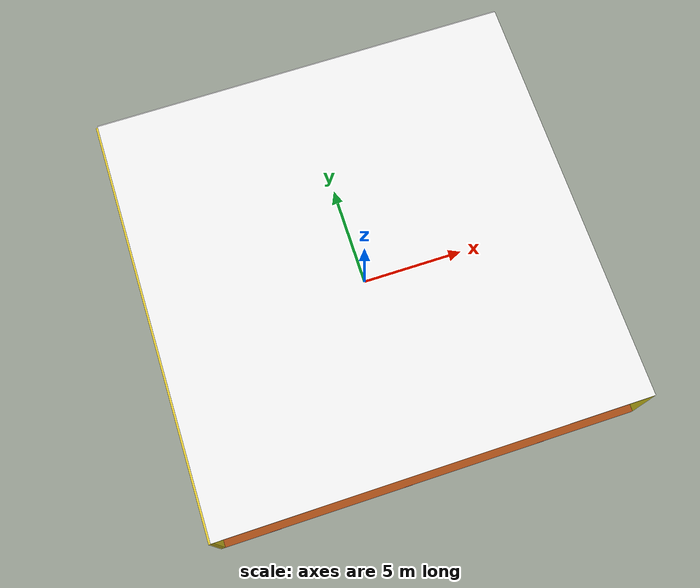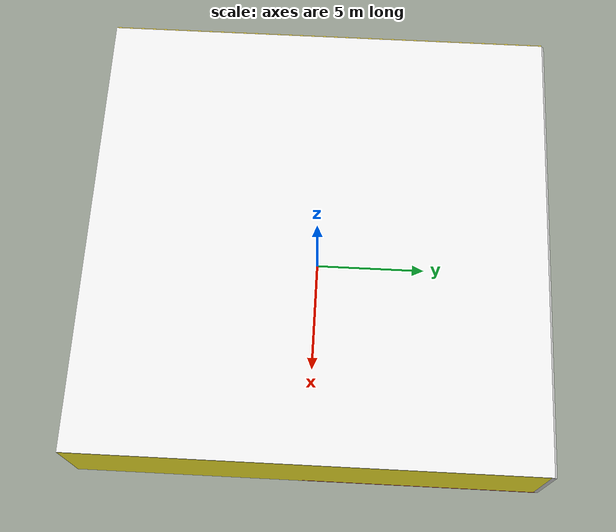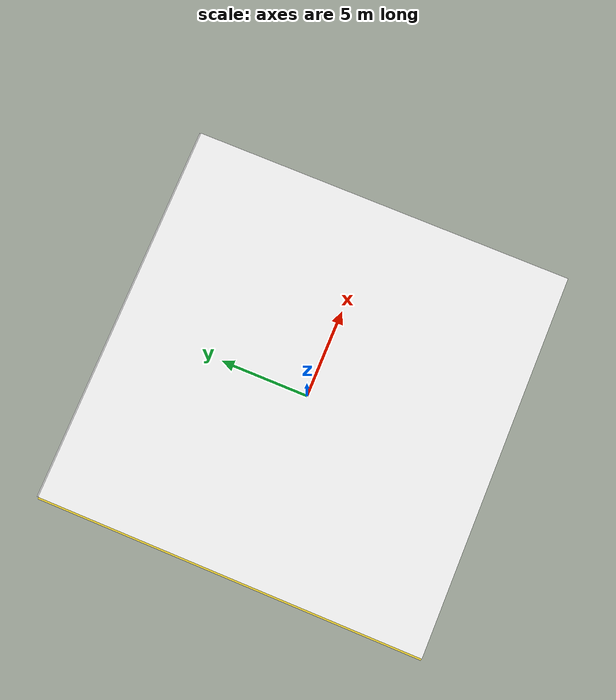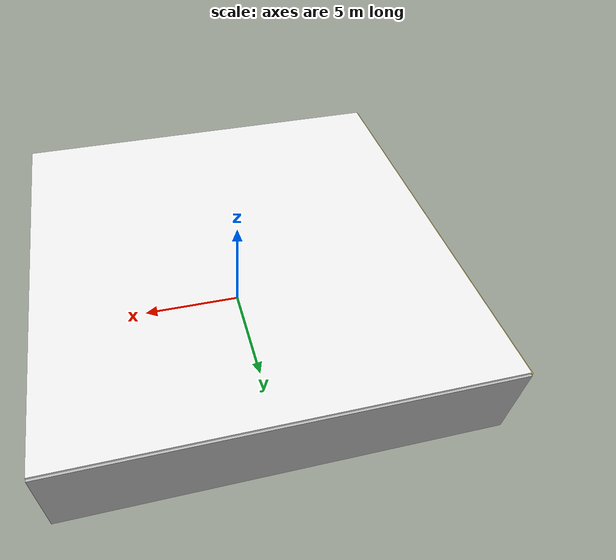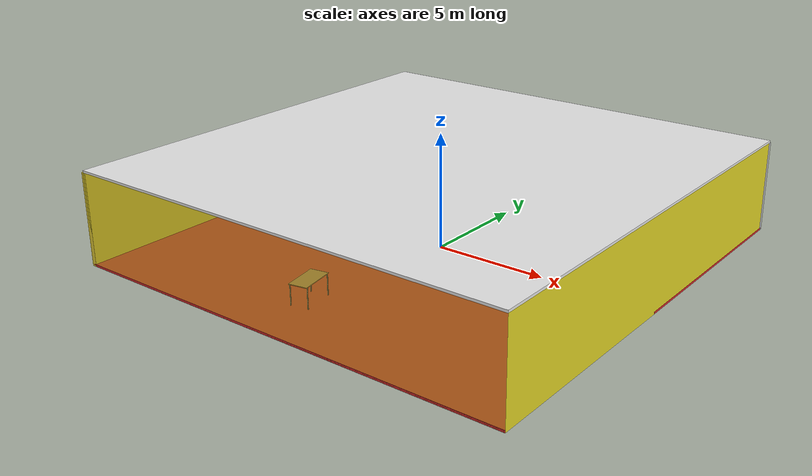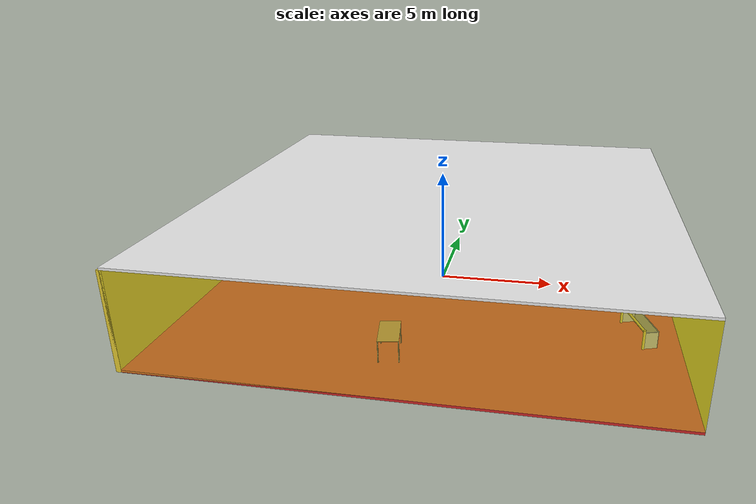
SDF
<sdf version="1.4">
 <world name="default">
  <physics type="ode">
   <max_step_size>0.001</max_step_size>
   <real_time_factor>1</real_time_factor>
   <real_time_update_rate>1000</real_time_update_rate>
   <gravity>0 0 -9.8</gravity>
  </physics>
  <scene><ambient>0.4 0.4 0.4 1</ambient><background>0.7 0.7 0.7 1</background><shadows>1</shadows></scene>
  <model name="Surrounding">
   <static>1</static>
   <link name="Ceiling">
    <collision name="Ceiling_Collision"><geometry><box><size>20 20 0.1</size></box></geometry></collision>
    <visual name="Ceiling_Visual">
     <geometry><box><size>20 20 0.1</size></box></geometry>
     <material>
      <script><uri>file://media/materials/scripts/gazebo.material</uri><name>Gazebo/WhiteGlow</name></script>
     </material>
    </visual>
    <pose>0 0 4.05 0 0 0</pose>
   </link>
   <link name="Wall_South">
    <collision name="Wall_South_Collision">
     <geometry><box><size>20 0 4</size></box></geometry>
     <pose>0 0 2 0 -0 0</pose>
    </collision>
    <visual name="Wall_South_Visual">
     <pose>0 0 2 0 -0 0</pose>
     <geometry><box><size>20 0 4</size></box></geometry>
     <material>
      <script>
       <uri>file://media/materials/scripts/gazebo.material</uri>
       <name>Gazebo/YellowTransparent</name>
      </script>
     </material>
    </visual>
    <velocity_decay><linear>0</linear><angular>0</angular></velocity_decay>
    <pose>0 -10 0 0 -0 0</pose>
   </link>
   <link name="Wall_East">
    <collision name="Wall_21_Collision">
     <geometry><box><size>20 0 4</size></box></geometry>
     <pose>0 0 2 0 -0 0</pose>
    </collision>
    <visual name="Wall_21_Visual">
     <pose>0 0 2 0 -0 0</pose>
     <geometry><box><size>20 0 4</size></box></geometry>
     <material>
      <script><uri>file://media/materials/scripts/gazebo.material</uri><name>Gazebo/YellowGlow</name></script>
     </material>
    </visual>
    <velocity_decay><linear>0</linear><angular>0</angular></velocity_decay>
    <pose>10 0 0 0 -0 1.5708</pose>
   </link>
   <link name="Wall_North">
    <collision name="Wall_22_Collision">
     <geometry><box><size>20 0.2 4</size></box></geometry>
     <pose>0 0 2 0 -0 0</pose>
    </collision>
    <visual name="Wall_22_Visual">
     <pose>0 0 2 0 -0 0</pose>
     <geometry><box><size>20 0.2 4</size></box></geometry>
     <material>
      <script><uri>file://media/materials/scripts/gazebo.material</uri><name>Gazebo/CloudySky</name></script>
     </material>
    </visual>
    <velocity_decay><linear>0</linear><angular>0</angular></velocity_decay>
    <pose>0 10 0 0 -0 0</pose>
   </link>
   <link name="Wall_West">
    <collision name="Wall_23_Collision">
     <geometry><box><size>20 0.2 4</size></box></geometry>
     <pose>0 0 2 0 -0 0</pose>
    </collision>
    <visual name="Wall_23_Visual">
     <pose>0 0 2 0 -0 0</pose>
     <geometry><box><size>20 0.2 4</size></box></geometry>
     <material>
      <script><uri>file://media/materials/scripts/gazebo.material</uri><name>Gazebo/ZincYellow</name></script>
     </material>
    </visual>
    <velocity_decay><linear>0</linear><angular>0</angular></velocity_decay>
    <pose>-10 0 0 0 0 -1.5708</pose>
   </link>
   <link name="Ground_link">
    <collision name="collision">
     <pose>0 0 .05 0 -0 0</pose>
     <geometry><box><size>20 20 0.1</size></box></geometry>
    </collision>
    <visual name="visual">
     <pose>0 0 .05 0 -0 0</pose>
     <geometry><box><size>20 20 0.1</size></box></geometry>
     <material>
      <script><uri>file://media/materials/scripts/gazebo.material</uri><name>Gazebo/RedBright</name></script>
     </material>
    </visual>
   </link>
   <static>1</static>
  </model>
  <spherical_coordinates>
   <surface_model>EARTH_WGS84</surface_model>
   <latitude_deg>0</latitude_deg>
   <longitude_deg>0</longitude_deg>
   <elevation>0</elevation>
   <heading_deg>0</heading_deg>
  </spherical_coordinates>
  <light name="lightball_0" type="diffuse">
   <diffuse>0.8 0.8 0.8 1</diffuse>
   <specular>0.2 0.2 0.2 1</specular>
   <attenuation>
    <range>100</range>
    <constant>0.7</constant>
    <linear>0.01</linear>
    <quadratic>0.001</quadratic>
   </attenuation>
   <direction>-0.5 0.1 -0.9</direction>
   <pose>3.97682833878 9.32883836696 0.547414844808 0 0 0</pose>
  </light>
  <light name="lightball_1" type="diffuse">
   <diffuse>0.8 0.8 0.8 1</diffuse>
   <specular>0.2 0.2 0.2 1</specular>
   <attenuation>
    <range>100</range>
    <constant>0.7</constant>
    <linear>0.01</linear>
    <quadratic>0.001</quadratic>
   </attenuation>
   <direction>-0.5 0.1 -0.9</direction>
   <pose>-9.34003620171 -5.01010625796 2.99863847279 0 0 0</pose>
  </light>
  <light name="lightball_2" type="diffuse">
   <diffuse>0.8 0.8 0.8 1</diffuse>
   <specular>0.2 0.2 0.2 1</specular>
   <attenuation>
    <range>100</range>
    <constant>0.7</constant>
    <linear>0.01</linear>
    <quadratic>0.001</quadratic>
   </attenuation>
   <direction>-0.5 0.1 -0.9</direction>
   <pose>9.29557534041 9.35300004025 0.864081971843 0 0 0</pose>
  </light>
  <light name="lightball_3" type="diffuse">
   <diffuse>0.8 0.8 0.8 1</diffuse>
   <specular>0.2 0.2 0.2 1</specular>
   <attenuation>
    <range>100</range>
    <constant>0.7</constant>
    <linear>0.01</linear>
    <quadratic>0.001</quadratic>
   </attenuation>
   <direction>-0.5 0.1 -0.9</direction>
   <pose>9.22709508611 4.28334156825 3.78574082918 0 0 0</pose>
  </light>
  <light name="lightball_4" type="diffuse">
   <diffuse>0.8 0.8 0.8 1</diffuse>
   <specular>0.2 0.2 0.2 1</specular>
   <attenuation>
    <range>100</range>
    <constant>0.7</constant>
    <linear>0.01</linear>
    <quadratic>0.001</quadratic>
   </attenuation>
   <direction>-0.5 0.1 -0.9</direction>
   <pose>-2.7582185648 -5.24785226064 3.43266816246 0 0 0</pose>
  </light>
  <light name="lightball_5" type="diffuse">
   <diffuse>0.8 0.8 0.8 1</diffuse>
   <specular>0.2 0.2 0.2 1</specular>
   <attenuation>
    <range>100</range>
    <constant>0.7</constant>
    <linear>0.01</linear>
    <quadratic>0.001</quadratic>
   </attenuation>
   <direction>-0.5 0.1 -0.9</direction>
   <pose>5.71317175404 5.27967562852 1.64925007542 0 0 0</pose>
  </light>
  <light name="lightball_6" type="diffuse">
   <diffuse>0.8 0.8 0.8 1</diffuse>
   <specular>0.2 0.2 0.2 1</specular>
   <attenuation>
    <range>100</range>
    <constant>0.7</constant>
    <linear>0.01</linear>
    <quadratic>0.001</quadratic>
   </attenuation>
   <direction>-0.5 0.1 -0.9</direction>
   <pose>-7.45309151891 -7.03545470341 1.09054288199 0 0 0</pose>
  </light>
  <light name="lightball_7" type="diffuse">
   <diffuse>0.8 0.8 0.8 1</diffuse>
   <specular>0.2 0.2 0.2 1</specular>
   <attenuation>
    <range>100</range>
    <constant>0.7</constant>
    <linear>0.01</linear>
    <quadratic>0.001</quadratic>
   </attenuation>
   <direction>-0.5 0.1 -0.9</direction>
   <pose>8.05590263008 6.01483720596 2.00908124921 0 0 0</pose>
  </light>
  <light name="lightball_8" type="diffuse">
   <diffuse>0.8 0.8 0.8 1</diffuse>
   <specular>0.2 0.2 0.2 1</specular>
   <attenuation>
    <range>100</range>
    <constant>0.7</constant>
    <linear>0.01</linear>
    <quadratic>0.001</quadratic>
   </attenuation>
   <direction>-0.5 0.1 -0.9</direction>
   <pose>5.29389690861 -7.74655510409 3.24178524283 0 0 0</pose>
  </light>
  <light name="lightball_9" type="diffuse">
   <diffuse>0.8 0.8 0.8 1</diffuse>
   <specular>0.2 0.2 0.2 1</specular>
   <attenuation>
    <range>100</range>
    <constant>0.7</constant>
    <linear>0.01</linear>
    <quadratic>0.001</quadratic>
   </attenuation>
   <direction>-0.5 0.1 -0.9</direction>
   <pose>3.05475454989 -0.320932547386 2.71170592646 0 0 0</pose>
  </light>
  <light name="lightball_10" type="diffuse">
   <diffuse>0.8 0.8 0.8 1</diffuse>
   <specular>0.2 0.2 0.2 1</specular>
   <attenuation>
    <range>100</range>
    <constant>0.7</constant>
    <linear>0.01</linear>
    <quadratic>0.001</quadratic>
   </attenuation>
   <direction>-0.5 0.1 -0.9</direction>
   <pose>3.78182624142 -5.36582544412 3.01513921709 0 0 0</pose>
  </light>
  <light name="lightball_11" type="diffuse">
   <diffuse>0.8 0.8 0.8 1</diffuse>
   <specular>0.2 0.2 0.2 1</specular>
   <attenuation>
    <range>100</range>
    <constant>0.7</constant>
    <linear>0.01</linear>
    <quadratic>0.001</quadratic>
   </attenuation>
   <direction>-0.5 0.1 -0.9</direction>
   <pose>-6.94657071743 -8.65614219876 1.31934745848 0 0 0</pose>
  </light>
  <light name="lightball_12" type="diffuse">
   <diffuse>0.8 0.8 0.8 1</diffuse>
   <specular>0.2 0.2 0.2 1</specular>
   <attenuation>
    <range>100</range>
    <constant>0.7</constant>
    <linear>0.01</linear>
    <quadratic>0.001</quadratic>
   </attenuation>
   <direction>-0.5 0.1 -0.9</direction>
   <pose>-2.45998644504 3.02152828858 2.64933029381 0 0 0</pose>
  </light>
  <include>
   <uri>model://construction_cone</uri>
   <pose>-3.46924592117 -2.08482971433 0 0 0 3.02755302895</pose>
  </include>
  <include><uri>model://table</uri><pose>-4.35743549242 7.6263648807 0 0 0 1.98253296624</pose></include>
  <include><uri>model://table</uri><pose>-0.747020598218 -7.15608955588 0 0 0 1.75252176521</pose></include>
  <include>
   <uri>model://construction_cone</uri>
   <pose>2.50051902542 3.37471373492 0 0 0 2.81217266102</pose>
  </include>
  <include>
   <uri>model://textured_shapes</uri>
   <pose>5.1466393375 7.95201608115 0 0 0 0.92502199646</pose>
  </include>
  <include>
   <uri>model://robocup_3Dsim_goal</uri>
   <pose>8.23787553743 -4.2499921337 0 0 0 0.318793030055</pose>
  </include>
  <include>
   <uri>model://construction_cone</uri>
   <pose>7.40903548979 2.52380728318 0 0 0 2.10963653537</pose>
  </include>
  <include>
   <uri>model://textured_shapes</uri>
   <pose>6.77915736604 7.07527549921 0 0 0 2.82453844029</pose>
  </include>
 </world>
</sdf>

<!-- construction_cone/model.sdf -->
<sdf version="1.5">
  <model name="Construction Cone">
    <link name="link">
      <collision name="collision">
        <geometry>
          <mesh>
            <scale>10 10 10</scale>
            <uri>file://isr-testbed/construction_cone/meshes/construction_cone.dae</uri>
          </mesh>
        </geometry>
      </collision>
      <visual name="visual">
        <geometry>
          <mesh>
            <scale>10 10 10</scale>
            <uri>file://isr-testbed/construction_cone/meshes/construction_cone.dae</uri>
          </mesh>
        </geometry>
      </visual>
    </link>
  </model>
</sdf>

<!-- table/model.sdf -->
<sdf version="1.5">
  <model name="table">
    <static>true</static>
    <link name="link">
      <collision name="surface">
        <pose>0 0 1.0 0 0 0</pose>
        <geometry>
          <box>
            <size>1.5 0.8 0.03</size>
          </box>
        </geometry>
        <surface>
          <friction>
            <ode>
              <mu>0.6</mu>
              <mu2>0.6</mu2>
            </ode>
          </friction>
        </surface>
      </collision>
      <visual name="visual1">
        <pose>0 0 1.0 0 0 0</pose>
        <geometry>
          <box>
            <size>1.5 0.8 0.03</size>
          </box>
        </geometry>
        <material>
          <script>
            <uri>model://media/materials/scripts/gazebo.material</uri>
            <name>Gazebo/Wood</name>
          </script>
        </material>
      </visual>
      <collision name="front_left_leg">
        <pose>0.68 0.38 0.5 0 0 0</pose>
        <geometry>
          <cylinder>
            <radius>0.02</radius>
            <length>1.0</length>
          </cylinder>
        </geometry>
      </collision>
      <visual name="front_left_leg">
        <pose>0.68 0.38 0.5 0 0 0</pose>
        <geometry>
          <cylinder>
            <radius>0.02</radius>
            <length>1.0</length>
          </cylinder>
        </geometry>
        <material>
          <script>
            <uri>model://media/materials/scripts/gazebo.material</uri>
            <name>Gazebo/Grey</name>
          </script>
        </material>
      </visual>
      <collision name="front_right_leg">
        <pose>0.68 -0.38 0.5 0 0 0</pose>
        <geometry>
          <cylinder>
            <radius>0.02</radius>
            <length>1.0</length>
          </cylinder>
        </geometry>
      </collision>
      <visual name="front_right_leg">
        <pose>0.68 -0.38 0.5 0 0 0</pose>
        <geometry>
          <cylinder>
            <radius>0.02</radius>
            <length>1.0</length>
          </cylinder>
        </geometry>
        <material>
          <script>
            <uri>model://media/materials/scripts/gazebo.material</uri>
            <name>Gazebo/Grey</name>
          </script>
        </material>
      </visual>
      <collision name="back_right_leg">
        <pose>-0.68 -0.38 0.5 0 0 0</pose>
        <geometry>
          <cylinder>
            <radius>0.02</radius>
            <length>1.0</length>
          </cylinder>
        </geometry>
      </collision>
      <visual name="back_right_leg">
        <pose>-0.68 -0.38 0.5 0 0 0</pose>
        <geometry>
          <cylinder>
            <radius>0.02</radius>
            <length>1.0</length>
          </cylinder>
        </geometry>
        <material>
          <script>
            <uri>model://media/materials/scripts/gazebo.material</uri>
            <name>Gazebo/Grey</name>
          </script>
        </material>
      </visual>
      <collision name="back_left_leg">
        <pose>-0.68 0.38 0.5 0 0 0</pose>
        <geometry>
          <cylinder>
            <radius>0.02</radius>
            <length>1.0</length>
          </cylinder>
        </geometry>
      </collision>
      <visual name="back_left_leg">
        <pose>-0.68 0.38 0.5 0 0 0</pose>
        <geometry>
          <cylinder>
            <radius>0.02</radius>
            <length>1.0</length>
          </cylinder>
        </geometry>
        <material>
          <script>
            <uri>model://media/materials/scripts/gazebo.material</uri>
            <name>Gazebo/Grey</name>
          </script>
        </material>
      </visual>
    </link>
  </model>
</sdf>

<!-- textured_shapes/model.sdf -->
<sdf version="1.6">
  <model name="textured_shapes">
    <pose>0 0 0.5 0 0 0</pose>
    <link name="box">
      <pose>0 -1.5 0 0 0 0</pose>
      <collision name="collision">
        <geometry>
          <box>
            <size>1 1 1</size>
          </box>
        </geometry>
      </collision>
      <visual name="visual">
        <geometry>
          <box>
            <size>1 1 1</size>
          </box>
        </geometry>
        <material>
          <script>
            <uri>model://../model_source/models/textured_shapes/materials/scripts</uri>
            <uri>model://../model_source/models/textured_shapes/materials/textures</uri>
            <name>TexturedShape/Squares</name>
          </script>
        </material>
      </visual>
    </link>
    <link name="sphere">
      <collision name="collision">
        <geometry>
          <sphere>
            <radius>0.5</radius>
          </sphere>
        </geometry>
      </collision>
      <visual name="visual">
        <geometry>
          <sphere>
            <radius>0.5</radius>
          </sphere>
        </geometry>
        <material>
          <script>
            <uri>model://../model_source/models/textured_shapes/materials/scripts</uri>
            <uri>model://../model_source/models/textured_shapes/materials/textures</uri>
            <name>TexturedShape/Squares</name>
          </script>
        </material>
      </visual>
    </link>
    <link name="cylinder">
      <pose>0 1.5 0 0 0 0</pose>
      <collision name="collision">
        <geometry>
          <cylinder>
            <radius>0.5</radius>
            <length>1</length>
          </cylinder>
        </geometry>
      </collision>
      <visual name="visual">
        <geometry>
          <cylinder>
            <radius>0.5</radius>
            <length>1</length>
          </cylinder>
        </geometry>
        <material>
          <script>
            <uri>model://../model_source/models/textured_shapes/materials/scripts</uri>
            <uri>model://../model_source/models/textured_shapes/materials/textures</uri>
            <name>TexturedShape/Squares</name>
          </script>
        </material>
      </visual>
    </link>
  </model>
</sdf>

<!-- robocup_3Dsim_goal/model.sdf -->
<sdf version="1.5">
  <model name="robocup_3d_goal">
    <static>true</static>
    <link name="left_post">
      <pose>0 1.05 0.45 0 0 0</pose>
      <collision name="collision">
        <geometry>
          <cylinder>
            <radius>0.05</radius>
            <length>0.9</length>
          </cylinder>
        </geometry>
      </collision>
      <visual name="visual">
        <geometry>
          <cylinder>
            <radius>0.05</radius>
            <length>0.9</length>
          </cylinder>
        </geometry>
        <material>
          <script>
            <uri>file://media/materials/scripts/gazebo.material</uri>
            <name>Gazebo/ZincYellow</name>
          </script>
        </material>
      </visual>
    </link>
    <link name="left_support_horiz_lower">
      <pose>0.30 1.05 0.01 0 0 0</pose>
      <collision name="collision">
        <geometry>
          <box>
            <size>0.50 0.02 0.02</size>
          </box>
        </geometry>
      </collision>
      <visual name="visual">
        <geometry>
          <box>
            <size>0.50 0.02 0.02</size>
          </box>
        </geometry>
        <material>
          <script>
            <uri>file://media/materials/scripts/gazebo.material</uri>
            <name>Gazebo/White</name>
          </script>
        </material>
      </visual>
    </link>
    <link name="left_support_horiz_upper">
      <pose>0.30 1.05 0.79 0 0 0</pose>
      <collision name="collision">
        <geometry>
          <box>
            <size>0.50 0.02 0.02</size>
          </box>
        </geometry>
      </collision>
      <visual name="visual">
        <geometry>
          <box>
            <size>0.50 0.02 0.02</size>
          </box>
        </geometry>
        <material>
          <script>
            <uri>file://media/materials/scripts/gazebo.material</uri>
            <name>Gazebo/White</name>
          </script>
        </material>
      </visual>
    </link>
    <link name="left_support_vertical">
      <pose>0.56 1.05 0.4 0 1.5708 0</pose>
      <collision name="collision">
        <geometry>
          <box>
            <size>0.80 0.02 0.02</size>
          </box>
        </geometry>
      </collision>
      <visual name="visual">
        <geometry>
          <box>
            <size>0.80 0.02 0.02</size>
          </box>
        </geometry>
        <material>
          <script>
            <uri>file://media/materials/scripts/gazebo.material</uri>
            <name>Gazebo/White</name>
          </script>
        </material>
      </visual>
    </link>
    <link name="right_support_horiz_lower">
      <pose>0.30 -1.05 0.01 0 0 0</pose>
      <collision name="collision">
        <geometry>
          <box>
            <size>0.50 0.02 0.02</size>
          </box>
        </geometry>
      </collision>
      <visual name="visual">
        <geometry>
          <box>
            <size>0.50 0.02 0.02</size>
          </box>
        </geometry>
        <material>
          <script>
            <uri>file://media/materials/scripts/gazebo.material</uri>
            <name>Gazebo/White</name>
          </script>
        </material>
      </visual>
    </link>
    <link name="right_support_horiz_upper">
      <pose>0.30 -1.05 0.79 0 0 0</pose>
      <collision name="collision">
        <geometry>
          <box>
            <size>0.50 0.02 0.02</size>
          </box>
        </geometry>
      </collision>
      <visual name="visual">
        <geometry>
          <box>
            <size>0.50 0.02 0.02</size>
          </box>
        </geometry>
        <material>
          <script>
            <uri>file://media/materials/scripts/gazebo.material</uri>
            <name>Gazebo/White</name>
          </script>
        </material>
      </visual>
    </link>
    <link name="right_support_vertical">
      <pose>0.56 -1.05 0.4 0 1.5708 0</pose>
      <collision name="collision">
        <geometry>
          <box>
            <size>0.80 0.02 0.02</size>
          </box>
        </geometry>
      </collision>
      <visual name="visual">
        <geometry>
          <box>
            <size>0.80 0.02 0.02</size>
          </box>
        </geometry>
        <material>
          <script>
            <uri>file://media/materials/scripts/gazebo.material</uri>
            <name>Gazebo/White</name>
          </script>
        </material>
      </visual>
    </link>
    <link name="center_support_horiz_lower">
      <pose>0.56 0 0.01 0 1.5708 0</pose>
      <collision name="collision">
        <geometry>
          <box>
            <size>0.02 2.08 0.02</size>
          </box>
        </geometry>
      </collision>
      <visual name="visual">
        <geometry>
          <box>
            <size>0.02 2.08 0.02</size>
          </box>
        </geometry>
        <material>
          <script>
            <uri>file://media/materials/scripts/gazebo.material</uri>
            <name>Gazebo/White</name>
          </script>
        </material>
      </visual>
    </link>
    <link name="center_support_horiz_upper">
      <pose>0.56 0 0.79 0 1.5708 0</pose>
      <collision name="collision">
        <geometry>
          <box>
            <size>0.02 2.08 0.02</size>
          </box>
        </geometry>
      </collision>
      <visual name="visual">
        <geometry>
          <box>
            <size>0.02 2.08 0.02</size>
          </box>
        </geometry>
        <material>
          <script>
            <uri>file://media/materials/scripts/gazebo.material</uri>
            <name>Gazebo/White</name>
          </script>
        </material>
      </visual>
    </link>
    <link name="right_post">
      <pose>0 -1.05 0.45 0 0 0</pose>
      <collision name="collision">
        <geometry>
          <cylinder>
            <radius>0.05</radius>
            <length>0.9</length>
          </cylinder>
        </geometry>
      </collision>
      <visual name="visual">
        <geometry>
          <cylinder>
            <radius>0.05</radius>
            <length>0.9</length>
          </cylinder>
        </geometry>
        <material>
          <script>
            <uri>file://media/materials/scripts/gazebo.material</uri>
            <name>Gazebo/ZincYellow</name>
          </script>
        </material>
      </visual>
    </link>
    <link name="crossbar">
      <pose>0 0 0.85 1.57 1.57 0</pose>
      <collision name="collision">
        <geometry>
          <cylinder>
            <radius>0.05</radius>
            <length>2.0</length>
          </cylinder>
        </geometry>
      </collision>
      <visual name="visual">
        <geometry>
          <cylinder>
            <radius>0.05</radius>
            <length>2.0</length>
          </cylinder>
        </geometry>
        <material>
          <script>
            <uri>file://media/materials/scripts/gazebo.material</uri>
            <name>Gazebo/ZincYellow</name>
          </script>
        </material>
      </visual>
    </link>
    <link name="center_net">
      <pose>0.56 0 0.40 0 0 0</pose>
      <collision name="collision">
        <geometry>
          <box>
            <size>0.01 2.1 0.80</size>
          </box>
        </geometry>
      </collision>
      <visual name="visual">
        <geometry>
          <box>
            <size>0.01 2.1 0.80</size>
          </box>
        </geometry>
        <material>
          <script>
            <uri>model://../model_source/models/robocup09_spl_field/materials/scripts/</uri>
            <uri>model://../model_source/models/robocup09_spl_field/materials/textures/</uri>
            <name>RoboCup/Net</name>
          </script>
        </material>
      </visual>
    </link>
    <link name="left_net">
      <pose>0.30 1.05 0.40 0 0 0</pose>
      <collision name="collision">
        <geometry>
          <box>
            <size>0.50 0.01 0.76</size>
          </box>
        </geometry>
      </collision>
      <visual name="visual">
        <geometry>
          <box>
            <size>0.50 0.01 0.76</size>
          </box>
        </geometry>
        <material>
          <script>
            <uri>model://../model_source/models/robocup09_spl_field/materials/scripts/</uri>
            <uri>model://../model_source/models/robocup09_spl_field/materials/textures/</uri>
            <name>RoboCup/Net</name>
          </script>
        </material>
      </visual>
    </link>
    <link name="right_net">
      <pose>0.30 -1.05 0.40 0 0 0</pose>
      <collision name="collision">
        <geometry>
          <box>
            <size>0.50 0.01 0.76</size>
          </box>
        </geometry>
      </collision>
      <visual name="visual">
        <geometry>
          <box>
            <size>0.50 0.01 0.76</size>
          </box>
        </geometry>
        <material>
          <script>
            <uri>model://../model_source/models/robocup09_spl_field/materials/scripts/</uri>
            <uri>model://../model_source/models/robocup09_spl_field/materials/textures/</uri>
            <name>RoboCup/Net</name>
          </script>
        </material>
      </visual>
    </link>
  </model>
</sdf>
